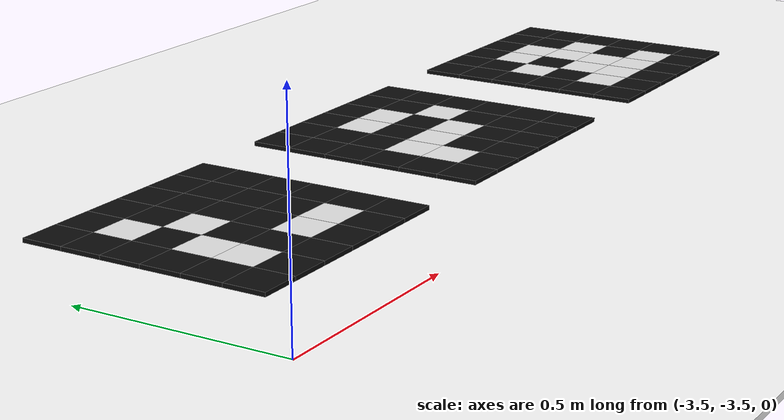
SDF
<sdf version="1.10">
 <world name="uav_world123">
  <model name="aruco_marker_101">
   <pose>-3 -3 0.014999999999999999 0 0 0</pose>
   <static>true</static>
   <link name="link">
    <visual name="block_0_0">
     <pose>-0.25 -0.25 0 0 0 0</pose>
     <geometry><box><size>0.10000000000000001 0.10000000000000001 0.01</size></box></geometry>
     <material>
      <ambient>0.0500000007 0.0500000007 0.0500000007 1</ambient>
      <diffuse>0.0500000007 0.0500000007 0.0500000007 1</diffuse>
     </material>
    </visual>
    <visual name="block_0_1">
     <pose>-0.15000000000000002 -0.25 0 0 0 0</pose>
     <geometry><box><size>0.10000000000000001 0.10000000000000001 0.01</size></box></geometry>
     <material>
      <ambient>0.0500000007 0.0500000007 0.0500000007 1</ambient>
      <diffuse>0.0500000007 0.0500000007 0.0500000007 1</diffuse>
     </material>
    </visual>
    <visual name="block_0_2">
     <pose>-0.050000000000000003 -0.25 0 0 0 0</pose>
     <geometry><box><size>0.10000000000000001 0.10000000000000001 0.01</size></box></geometry>
     <material>
      <ambient>0.0500000007 0.0500000007 0.0500000007 1</ambient>
      <diffuse>0.0500000007 0.0500000007 0.0500000007 1</diffuse>
     </material>
    </visual>
    <visual name="block_0_3">
     <pose>0.050000000000000003 -0.25 0 0 0 0</pose>
     <geometry><box><size>0.10000000000000001 0.10000000000000001 0.01</size></box></geometry>
     <material>
      <ambient>0.0500000007 0.0500000007 0.0500000007 1</ambient>
      <diffuse>0.0500000007 0.0500000007 0.0500000007 1</diffuse>
     </material>
    </visual>
    <visual name="block_0_4">
     <pose>0.15000000000000002 -0.25 0 0 0 0</pose>
     <geometry><box><size>0.10000000000000001 0.10000000000000001 0.01</size></box></geometry>
     <material>
      <ambient>0.0500000007 0.0500000007 0.0500000007 1</ambient>
      <diffuse>0.0500000007 0.0500000007 0.0500000007 1</diffuse>
     </material>
    </visual>
    <visual name="block_0_5">
     <pose>0.25 -0.25 0 0 0 0</pose>
     <geometry><box><size>0.10000000000000001 0.10000000000000001 0.01</size></box></geometry>
     <material>
      <ambient>0.0500000007 0.0500000007 0.0500000007 1</ambient>
      <diffuse>0.0500000007 0.0500000007 0.0500000007 1</diffuse>
     </material>
    </visual>
    <visual name="block_1_0">
     <pose>-0.25 -0.15000000000000002 0 0 0 0</pose>
     <geometry><box><size>0.10000000000000001 0.10000000000000001 0.01</size></box></geometry>
     <material>
      <ambient>0.0500000007 0.0500000007 0.0500000007 1</ambient>
      <diffuse>0.0500000007 0.0500000007 0.0500000007 1</diffuse>
     </material>
    </visual>
    <visual name="block_1_1">
     <pose>-0.15000000000000002 -0.15000000000000002 0 0 0 0</pose>
     <geometry><box><size>0.10000000000000001 0.10000000000000001 0.01</size></box></geometry>
     <material>
      <ambient>0.899999976 0.899999976 0.899999976 1</ambient>
      <diffuse>0.899999976 0.899999976 0.899999976 1</diffuse>
     </material>
    </visual>
    <visual name="block_1_2">
     <pose>-0.050000000000000003 -0.15000000000000002 0 0 0 0</pose>
     <geometry><box><size>0.10000000000000001 0.10000000000000001 0.01</size></box></geometry>
     <material>
      <ambient>0.0500000007 0.0500000007 0.0500000007 1</ambient>
      <diffuse>0.0500000007 0.0500000007 0.0500000007 1</diffuse>
     </material>
    </visual>
    <visual name="block_1_3">
     <pose>0.050000000000000003 -0.15000000000000002 0 0 0 0</pose>
     <geometry><box><size>0.10000000000000001 0.10000000000000001 0.01</size></box></geometry>
     <material>
      <ambient>0.899999976 0.899999976 0.899999976 1</ambient>
      <diffuse>0.899999976 0.899999976 0.899999976 1</diffuse>
     </material>
    </visual>
    <visual name="block_1_4">
     <pose>0.15000000000000002 -0.15000000000000002 0 0 0 0</pose>
     <geometry><box><size>0.10000000000000001 0.10000000000000001 0.01</size></box></geometry>
     <material>
      <ambient>0.899999976 0.899999976 0.899999976 1</ambient>
      <diffuse>0.899999976 0.899999976 0.899999976 1</diffuse>
     </material>
    </visual>
    <visual name="block_1_5">
     <pose>0.25 -0.15000000000000002 0 0 0 0</pose>
     <geometry><box><size>0.10000000000000001 0.10000000000000001 0.01</size></box></geometry>
     <material>
      <ambient>0.0500000007 0.0500000007 0.0500000007 1</ambient>
      <diffuse>0.0500000007 0.0500000007 0.0500000007 1</diffuse>
     </material>
    </visual>
    <visual name="block_2_0">
     <pose>-0.25 -0.050000000000000003 0 0 0 0</pose>
     <geometry><box><size>0.10000000000000001 0.10000000000000001 0.01</size></box></geometry>
     <material>
      <ambient>0.0500000007 0.0500000007 0.0500000007 1</ambient>
      <diffuse>0.0500000007 0.0500000007 0.0500000007 1</diffuse>
     </material>
    </visual>
    <visual name="block_2_1">
     <pose>-0.15000000000000002 -0.050000000000000003 0 0 0 0</pose>
     <geometry><box><size>0.10000000000000001 0.10000000000000001 0.01</size></box></geometry>
     <material>
      <ambient>0.899999976 0.899999976 0.899999976 1</ambient>
      <diffuse>0.899999976 0.899999976 0.899999976 1</diffuse>
     </material>
    </visual>
    <visual name="block_2_2">
     <pose>-0.050000000000000003 -0.050000000000000003 0 0 0 0</pose>
     <geometry><box><size>0.10000000000000001 0.10000000000000001 0.01</size></box></geometry>
     <material>
      <ambient>0.0500000007 0.0500000007 0.0500000007 1</ambient>
      <diffuse>0.0500000007 0.0500000007 0.0500000007 1</diffuse>
     </material>
    </visual>
    <visual name="block_2_3">
     <pose>0.050000000000000003 -0.050000000000000003 0 0 0 0</pose>
     <geometry><box><size>0.10000000000000001 0.10000000000000001 0.01</size></box></geometry>
     <material>
      <ambient>0.0500000007 0.0500000007 0.0500000007 1</ambient>
      <diffuse>0.0500000007 0.0500000007 0.0500000007 1</diffuse>
     </material>
    </visual>
    <visual name="block_2_4">
     <pose>0.15000000000000002 -0.050000000000000003 0 0 0 0</pose>
     <geometry><box><size>0.10000000000000001 0.10000000000000001 0.01</size></box></geometry>
     <material>
      <ambient>0.0500000007 0.0500000007 0.0500000007 1</ambient>
      <diffuse>0.0500000007 0.0500000007 0.0500000007 1</diffuse>
     </material>
    </visual>
    <visual name="block_2_5">
     <pose>0.25 -0.050000000000000003 0 0 0 0</pose>
     <geometry><box><size>0.10000000000000001 0.10000000000000001 0.01</size></box></geometry>
     <material>
      <ambient>0.0500000007 0.0500000007 0.0500000007 1</ambient>
      <diffuse>0.0500000007 0.0500000007 0.0500000007 1</diffuse>
     </material>
    </visual>
    <visual name="block_3_0">
     <pose>-0.25 0.050000000000000003 0 0 0 0</pose>
     <geometry><box><size>0.10000000000000001 0.10000000000000001 0.01</size></box></geometry>
     <material>
      <ambient>0.0500000007 0.0500000007 0.0500000007 1</ambient>
      <diffuse>0.0500000007 0.0500000007 0.0500000007 1</diffuse>
     </material>
    </visual>
    <visual name="block_3_1">
     <pose>-0.15000000000000002 0.050000000000000003 0 0 0 0</pose>
     <geometry><box><size>0.10000000000000001 0.10000000000000001 0.01</size></box></geometry>
     <material>
      <ambient>0.0500000007 0.0500000007 0.0500000007 1</ambient>
      <diffuse>0.0500000007 0.0500000007 0.0500000007 1</diffuse>
     </material>
    </visual>
    <visual name="block_3_2">
     <pose>-0.050000000000000003 0.050000000000000003 0 0 0 0</pose>
     <geometry><box><size>0.10000000000000001 0.10000000000000001 0.01</size></box></geometry>
     <material>
      <ambient>0.899999976 0.899999976 0.899999976 1</ambient>
      <diffuse>0.899999976 0.899999976 0.899999976 1</diffuse>
     </material>
    </visual>
    <visual name="block_3_3">
     <pose>0.050000000000000003 0.050000000000000003 0 0 0 0</pose>
     <geometry><box><size>0.10000000000000001 0.10000000000000001 0.01</size></box></geometry>
     <material>
      <ambient>0.0500000007 0.0500000007 0.0500000007 1</ambient>
      <diffuse>0.0500000007 0.0500000007 0.0500000007 1</diffuse>
     </material>
    </visual>
    <visual name="block_3_4">
     <pose>0.15000000000000002 0.050000000000000003 0 0 0 0</pose>
     <geometry><box><size>0.10000000000000001 0.10000000000000001 0.01</size></box></geometry>
     <material>
      <ambient>0.0500000007 0.0500000007 0.0500000007 1</ambient>
      <diffuse>0.0500000007 0.0500000007 0.0500000007 1</diffuse>
     </material>
    </visual>
    <visual name="block_3_5">
     <pose>0.25 0.050000000000000003 0 0 0 0</pose>
     <geometry><box><size>0.10000000000000001 0.10000000000000001 0.01</size></box></geometry>
     <material>
      <ambient>0.0500000007 0.0500000007 0.0500000007 1</ambient>
      <diffuse>0.0500000007 0.0500000007 0.0500000007 1</diffuse>
     </material>
    </visual>
    <visual name="block_4_0">
     <pose>-0.25 0.15000000000000002 0 0 0 0</pose>
     <geometry><box><size>0.10000000000000001 0.10000000000000001 0.01</size></box></geometry>
     <material>
      <ambient>0.0500000007 0.0500000007 0.0500000007 1</ambient>
      <diffuse>0.0500000007 0.0500000007 0.0500000007 1</diffuse>
     </material>
    </visual>
    <visual name="block_4_1">
     <pose>-0.15000000000000002 0.15000000000000002 0 0 0 0</pose>
     <geometry><box><size>0.10000000000000001 0.10000000000000001 0.01</size></box></geometry>
     <material>
      <ambient>0.899999976 0.899999976 0.899999976 1</ambient>
      <diffuse>0.899999976 0.899999976 0.899999976 1</diffuse>
     </material>
    </visual>
    <visual name="block_4_2">
     <pose>-0.050000000000000003 0.15000000000000002 0 0 0 0</pose>
     <geometry><box><size>0.10000000000000001 0.10000000000000001 0.01</size></box></geometry>
     <material>
      <ambient>0.0500000007 0.0500000007 0.0500000007 1</ambient>
      <diffuse>0.0500000007 0.0500000007 0.0500000007 1</diffuse>
     </material>
    </visual>
    <visual name="block_4_3">
     <pose>0.050000000000000003 0.15000000000000002 0 0 0 0</pose>
     <geometry><box><size>0.10000000000000001 0.10000000000000001 0.01</size></box></geometry>
     <material>
      <ambient>0.0500000007 0.0500000007 0.0500000007 1</ambient>
      <diffuse>0.0500000007 0.0500000007 0.0500000007 1</diffuse>
     </material>
    </visual>
    <visual name="block_4_4">
     <pose>0.15000000000000002 0.15000000000000002 0 0 0 0</pose>
     <geometry><box><size>0.10000000000000001 0.10000000000000001 0.01</size></box></geometry>
     <material>
      <ambient>0.0500000007 0.0500000007 0.0500000007 1</ambient>
      <diffuse>0.0500000007 0.0500000007 0.0500000007 1</diffuse>
     </material>
    </visual>
    <visual name="block_4_5">
     <pose>0.25 0.15000000000000002 0 0 0 0</pose>
     <geometry><box><size>0.10000000000000001 0.10000000000000001 0.01</size></box></geometry>
     <material>
      <ambient>0.0500000007 0.0500000007 0.0500000007 1</ambient>
      <diffuse>0.0500000007 0.0500000007 0.0500000007 1</diffuse>
     </material>
    </visual>
    <visual name="block_5_0">
     <pose>-0.25 0.25 0 0 0 0</pose>
     <geometry><box><size>0.10000000000000001 0.10000000000000001 0.01</size></box></geometry>
     <material>
      <ambient>0.0500000007 0.0500000007 0.0500000007 1</ambient>
      <diffuse>0.0500000007 0.0500000007 0.0500000007 1</diffuse>
     </material>
    </visual>
    <visual name="block_5_1">
     <pose>-0.15000000000000002 0.25 0 0 0 0</pose>
     <geometry><box><size>0.10000000000000001 0.10000000000000001 0.01</size></box></geometry>
     <material>
      <ambient>0.0500000007 0.0500000007 0.0500000007 1</ambient>
      <diffuse>0.0500000007 0.0500000007 0.0500000007 1</diffuse>
     </material>
    </visual>
    <visual name="block_5_2">
     <pose>-0.050000000000000003 0.25 0 0 0 0</pose>
     <geometry><box><size>0.10000000000000001 0.10000000000000001 0.01</size></box></geometry>
     <material>
      <ambient>0.0500000007 0.0500000007 0.0500000007 1</ambient>
      <diffuse>0.0500000007 0.0500000007 0.0500000007 1</diffuse>
     </material>
    </visual>
    <visual name="block_5_3">
     <pose>0.050000000000000003 0.25 0 0 0 0</pose>
     <geometry><box><size>0.10000000000000001 0.10000000000000001 0.01</size></box></geometry>
     <material>
      <ambient>0.0500000007 0.0500000007 0.0500000007 1</ambient>
      <diffuse>0.0500000007 0.0500000007 0.0500000007 1</diffuse>
     </material>
    </visual>
    <visual name="block_5_4">
     <pose>0.15000000000000002 0.25 0 0 0 0</pose>
     <geometry><box><size>0.10000000000000001 0.10000000000000001 0.01</size></box></geometry>
     <material>
      <ambient>0.0500000007 0.0500000007 0.0500000007 1</ambient>
      <diffuse>0.0500000007 0.0500000007 0.0500000007 1</diffuse>
     </material>
    </visual>
    <visual name="block_5_5">
     <pose>0.25 0.25 0 0 0 0</pose>
     <geometry><box><size>0.10000000000000001 0.10000000000000001 0.01</size></box></geometry>
     <material>
      <ambient>0.0500000007 0.0500000007 0.0500000007 1</ambient>
      <diffuse>0.0500000007 0.0500000007 0.0500000007 1</diffuse>
     </material>
    </visual>
    <inertial>
     <mass>1</mass>
     <inertia><ixx>1</ixx><ixy>0</ixy><ixz>0</ixz><iyy>1</iyy><iyz>0</iyz><izz>1</izz></inertia>
    </inertial>
   </link>
  </model>
  <model name="aruco_marker_102">
   <pose>-2.2000000000000002 -3 0.014999999999999999 0 0 0</pose>
   <static>true</static>
   <link name="link">
    <visual name="block_0_0">
     <pose>-0.25 -0.25 0 0 0 0</pose>
     <geometry><box><size>0.10000000000000001 0.10000000000000001 0.01</size></box></geometry>
     <material>
      <ambient>0.0500000007 0.0500000007 0.0500000007 1</ambient>
      <diffuse>0.0500000007 0.0500000007 0.0500000007 1</diffuse>
     </material>
    </visual>
    <visual name="block_0_1">
     <pose>-0.15000000000000002 -0.25 0 0 0 0</pose>
     <geometry><box><size>0.10000000000000001 0.10000000000000001 0.01</size></box></geometry>
     <material>
      <ambient>0.0500000007 0.0500000007 0.0500000007 1</ambient>
      <diffuse>0.0500000007 0.0500000007 0.0500000007 1</diffuse>
     </material>
    </visual>
    <visual name="block_0_2">
     <pose>-0.050000000000000003 -0.25 0 0 0 0</pose>
     <geometry><box><size>0.10000000000000001 0.10000000000000001 0.01</size></box></geometry>
     <material>
      <ambient>0.0500000007 0.0500000007 0.0500000007 1</ambient>
      <diffuse>0.0500000007 0.0500000007 0.0500000007 1</diffuse>
     </material>
    </visual>
    <visual name="block_0_3">
     <pose>0.050000000000000003 -0.25 0 0 0 0</pose>
     <geometry><box><size>0.10000000000000001 0.10000000000000001 0.01</size></box></geometry>
     <material>
      <ambient>0.0500000007 0.0500000007 0.0500000007 1</ambient>
      <diffuse>0.0500000007 0.0500000007 0.0500000007 1</diffuse>
     </material>
    </visual>
    <visual name="block_0_4">
     <pose>0.15000000000000002 -0.25 0 0 0 0</pose>
     <geometry><box><size>0.10000000000000001 0.10000000000000001 0.01</size></box></geometry>
     <material>
      <ambient>0.0500000007 0.0500000007 0.0500000007 1</ambient>
      <diffuse>0.0500000007 0.0500000007 0.0500000007 1</diffuse>
     </material>
    </visual>
    <visual name="block_0_5">
     <pose>0.25 -0.25 0 0 0 0</pose>
     <geometry><box><size>0.10000000000000001 0.10000000000000001 0.01</size></box></geometry>
     <material>
      <ambient>0.0500000007 0.0500000007 0.0500000007 1</ambient>
      <diffuse>0.0500000007 0.0500000007 0.0500000007 1</diffuse>
     </material>
    </visual>
    <visual name="block_1_0">
     <pose>-0.25 -0.15000000000000002 0 0 0 0</pose>
     <geometry><box><size>0.10000000000000001 0.10000000000000001 0.01</size></box></geometry>
     <material>
      <ambient>0.0500000007 0.0500000007 0.0500000007 1</ambient>
      <diffuse>0.0500000007 0.0500000007 0.0500000007 1</diffuse>
     </material>
    </visual>
    <visual name="block_1_1">
     <pose>-0.15000000000000002 -0.15000000000000002 0 0 0 0</pose>
     <geometry><box><size>0.10000000000000001 0.10000000000000001 0.01</size></box></geometry>
     <material>
      <ambient>0.899999976 0.899999976 0.899999976 1</ambient>
      <diffuse>0.899999976 0.899999976 0.899999976 1</diffuse>
     </material>
    </visual>
    <visual name="block_1_2">
     <pose>-0.050000000000000003 -0.15000000000000002 0 0 0 0</pose>
     <geometry><box><size>0.10000000000000001 0.10000000000000001 0.01</size></box></geometry>
     <material>
      <ambient>0.0500000007 0.0500000007 0.0500000007 1</ambient>
      <diffuse>0.0500000007 0.0500000007 0.0500000007 1</diffuse>
     </material>
    </visual>
    <visual name="block_1_3">
     <pose>0.050000000000000003 -0.15000000000000002 0 0 0 0</pose>
     <geometry><box><size>0.10000000000000001 0.10000000000000001 0.01</size></box></geometry>
     <material>
      <ambient>0.0500000007 0.0500000007 0.0500000007 1</ambient>
      <diffuse>0.0500000007 0.0500000007 0.0500000007 1</diffuse>
     </material>
    </visual>
    <visual name="block_1_4">
     <pose>0.15000000000000002 -0.15000000000000002 0 0 0 0</pose>
     <geometry><box><size>0.10000000000000001 0.10000000000000001 0.01</size></box></geometry>
     <material>
      <ambient>0.0500000007 0.0500000007 0.0500000007 1</ambient>
      <diffuse>0.0500000007 0.0500000007 0.0500000007 1</diffuse>
     </material>
    </visual>
    <visual name="block_1_5">
     <pose>0.25 -0.15000000000000002 0 0 0 0</pose>
     <geometry><box><size>0.10000000000000001 0.10000000000000001 0.01</size></box></geometry>
     <material>
      <ambient>0.0500000007 0.0500000007 0.0500000007 1</ambient>
      <diffuse>0.0500000007 0.0500000007 0.0500000007 1</diffuse>
     </material>
    </visual>
    <visual name="block_2_0">
     <pose>-0.25 -0.050000000000000003 0 0 0 0</pose>
     <geometry><box><size>0.10000000000000001 0.10000000000000001 0.01</size></box></geometry>
     <material>
      <ambient>0.0500000007 0.0500000007 0.0500000007 1</ambient>
      <diffuse>0.0500000007 0.0500000007 0.0500000007 1</diffuse>
     </material>
    </visual>
    <visual name="block_2_1">
     <pose>-0.15000000000000002 -0.050000000000000003 0 0 0 0</pose>
     <geometry><box><size>0.10000000000000001 0.10000000000000001 0.01</size></box></geometry>
     <material>
      <ambient>0.899999976 0.899999976 0.899999976 1</ambient>
      <diffuse>0.899999976 0.899999976 0.899999976 1</diffuse>
     </material>
    </visual>
    <visual name="block_2_2">
     <pose>-0.050000000000000003 -0.050000000000000003 0 0 0 0</pose>
     <geometry><box><size>0.10000000000000001 0.10000000000000001 0.01</size></box></geometry>
     <material>
      <ambient>0.899999976 0.899999976 0.899999976 1</ambient>
      <diffuse>0.899999976 0.899999976 0.899999976 1</diffuse>
     </material>
    </visual>
    <visual name="block_2_3">
     <pose>0.050000000000000003 -0.050000000000000003 0 0 0 0</pose>
     <geometry><box><size>0.10000000000000001 0.10000000000000001 0.01</size></box></geometry>
     <material>
      <ambient>0.899999976 0.899999976 0.899999976 1</ambient>
      <diffuse>0.899999976 0.899999976 0.899999976 1</diffuse>
     </material>
    </visual>
    <visual name="block_2_4">
     <pose>0.15000000000000002 -0.050000000000000003 0 0 0 0</pose>
     <geometry><box><size>0.10000000000000001 0.10000000000000001 0.01</size></box></geometry>
     <material>
      <ambient>0.0500000007 0.0500000007 0.0500000007 1</ambient>
      <diffuse>0.0500000007 0.0500000007 0.0500000007 1</diffuse>
     </material>
    </visual>
    <visual name="block_2_5">
     <pose>0.25 -0.050000000000000003 0 0 0 0</pose>
     <geometry><box><size>0.10000000000000001 0.10000000000000001 0.01</size></box></geometry>
     <material>
      <ambient>0.0500000007 0.0500000007 0.0500000007 1</ambient>
      <diffuse>0.0500000007 0.0500000007 0.0500000007 1</diffuse>
     </material>
    </visual>
    <visual name="block_3_0">
     <pose>-0.25 0.050000000000000003 0 0 0 0</pose>
     <geometry><box><size>0.10000000000000001 0.10000000000000001 0.01</size></box></geometry>
     <material>
      <ambient>0.0500000007 0.0500000007 0.0500000007 1</ambient>
      <diffuse>0.0500000007 0.0500000007 0.0500000007 1</diffuse>
     </material>
    </visual>
    <visual name="block_3_1">
     <pose>-0.15000000000000002 0.050000000000000003 0 0 0 0</pose>
     <geometry><box><size>0.10000000000000001 0.10000000000000001 0.01</size></box></geometry>
     <material>
      <ambient>0.0500000007 0.0500000007 0.0500000007 1</ambient>
      <diffuse>0.0500000007 0.0500000007 0.0500000007 1</diffuse>
     </material>
    </visual>
    <visual name="block_3_2">
     <pose>-0.050000000000000003 0.050000000000000003 0 0 0 0</pose>
     <geometry><box><size>0.10000000000000001 0.10000000000000001 0.01</size></box></geometry>
     <material>
      <ambient>0.0500000007 0.0500000007 0.0500000007 1</ambient>
      <diffuse>0.0500000007 0.0500000007 0.0500000007 1</diffuse>
     </material>
    </visual>
    <visual name="block_3_3">
     <pose>0.050000000000000003 0.050000000000000003 0 0 0 0</pose>
     <geometry><box><size>0.10000000000000001 0.10000000000000001 0.01</size></box></geometry>
     <material>
      <ambient>0.0500000007 0.0500000007 0.0500000007 1</ambient>
      <diffuse>0.0500000007 0.0500000007 0.0500000007 1</diffuse>
     </material>
    </visual>
    <visual name="block_3_4">
     <pose>0.15000000000000002 0.050000000000000003 0 0 0 0</pose>
     <geometry><box><size>0.10000000000000001 0.10000000000000001 0.01</size></box></geometry>
     <material>
      <ambient>0.899999976 0.899999976 0.899999976 1</ambient>
      <diffuse>0.899999976 0.899999976 0.899999976 1</diffuse>
     </material>
    </visual>
    <visual name="block_3_5">
     <pose>0.25 0.050000000000000003 0 0 0 0</pose>
     <geometry><box><size>0.10000000000000001 0.10000000000000001 0.01</size></box></geometry>
     <material>
      <ambient>0.0500000007 0.0500000007 0.0500000007 1</ambient>
      <diffuse>0.0500000007 0.0500000007 0.0500000007 1</diffuse>
     </material>
    </visual>
    <visual name="block_4_0">
     <pose>-0.25 0.15000000000000002 0 0 0 0</pose>
     <geometry><box><size>0.10000000000000001 0.10000000000000001 0.01</size></box></geometry>
     <material>
      <ambient>0.0500000007 0.0500000007 0.0500000007 1</ambient>
      <diffuse>0.0500000007 0.0500000007 0.0500000007 1</diffuse>
     </material>
    </visual>
    <visual name="block_4_1">
     <pose>-0.15000000000000002 0.15000000000000002 0 0 0 0</pose>
     <geometry><box><size>0.10000000000000001 0.10000000000000001 0.01</size></box></geometry>
     <material>
      <ambient>0.0500000007 0.0500000007 0.0500000007 1</ambient>
      <diffuse>0.0500000007 0.0500000007 0.0500000007 1</diffuse>
     </material>
    </visual>
    <visual name="block_4_2">
     <pose>-0.050000000000000003 0.15000000000000002 0 0 0 0</pose>
     <geometry><box><size>0.10000000000000001 0.10000000000000001 0.01</size></box></geometry>
     <material>
      <ambient>0.899999976 0.899999976 0.899999976 1</ambient>
      <diffuse>0.899999976 0.899999976 0.899999976 1</diffuse>
     </material>
    </visual>
    <visual name="block_4_3">
     <pose>0.050000000000000003 0.15000000000000002 0 0 0 0</pose>
     <geometry><box><size>0.10000000000000001 0.10000000000000001 0.01</size></box></geometry>
     <material>
      <ambient>0.899999976 0.899999976 0.899999976 1</ambient>
      <diffuse>0.899999976 0.899999976 0.899999976 1</diffuse>
     </material>
    </visual>
    <visual name="block_4_4">
     <pose>0.15000000000000002 0.15000000000000002 0 0 0 0</pose>
     <geometry><box><size>0.10000000000000001 0.10000000000000001 0.01</size></box></geometry>
     <material>
      <ambient>0.0500000007 0.0500000007 0.0500000007 1</ambient>
      <diffuse>0.0500000007 0.0500000007 0.0500000007 1</diffuse>
     </material>
    </visual>
    <visual name="block_4_5">
     <pose>0.25 0.15000000000000002 0 0 0 0</pose>
     <geometry><box><size>0.10000000000000001 0.10000000000000001 0.01</size></box></geometry>
     <material>
      <ambient>0.0500000007 0.0500000007 0.0500000007 1</ambient>
      <diffuse>0.0500000007 0.0500000007 0.0500000007 1</diffuse>
     </material>
    </visual>
    <visual name="block_5_0">
     <pose>-0.25 0.25 0 0 0 0</pose>
     <geometry><box><size>0.10000000000000001 0.10000000000000001 0.01</size></box></geometry>
     <material>
      <ambient>0.0500000007 0.0500000007 0.0500000007 1</ambient>
      <diffuse>0.0500000007 0.0500000007 0.0500000007 1</diffuse>
     </material>
    </visual>
    <visual name="block_5_1">
     <pose>-0.15000000000000002 0.25 0 0 0 0</pose>
     <geometry><box><size>0.10000000000000001 0.10000000000000001 0.01</size></box></geometry>
     <material>
      <ambient>0.0500000007 0.0500000007 0.0500000007 1</ambient>
      <diffuse>0.0500000007 0.0500000007 0.0500000007 1</diffuse>
     </material>
    </visual>
    <visual name="block_5_2">
     <pose>-0.050000000000000003 0.25 0 0 0 0</pose>
     <geometry><box><size>0.10000000000000001 0.10000000000000001 0.01</size></box></geometry>
     <material>
      <ambient>0.0500000007 0.0500000007 0.0500000007 1</ambient>
      <diffuse>0.0500000007 0.0500000007 0.0500000007 1</diffuse>
     </material>
    </visual>
    <visual name="block_5_3">
     <pose>0.050000000000000003 0.25 0 0 0 0</pose>
     <geometry><box><size>0.10000000000000001 0.10000000000000001 0.01</size></box></geometry>
     <material>
      <ambient>0.0500000007 0.0500000007 0.0500000007 1</ambient>
      <diffuse>0.0500000007 0.0500000007 0.0500000007 1</diffuse>
     </material>
    </visual>
    <visual name="block_5_4">
     <pose>0.15000000000000002 0.25 0 0 0 0</pose>
     <geometry><box><size>0.10000000000000001 0.10000000000000001 0.01</size></box></geometry>
     <material>
      <ambient>0.0500000007 0.0500000007 0.0500000007 1</ambient>
      <diffuse>0.0500000007 0.0500000007 0.0500000007 1</diffuse>
     </material>
    </visual>
    <visual name="block_5_5">
     <pose>0.25 0.25 0 0 0 0</pose>
     <geometry><box><size>0.10000000000000001 0.10000000000000001 0.01</size></box></geometry>
     <material>
      <ambient>0.0500000007 0.0500000007 0.0500000007 1</ambient>
      <diffuse>0.0500000007 0.0500000007 0.0500000007 1</diffuse>
     </material>
    </visual>
    <inertial>
     <mass>1</mass>
     <inertia><ixx>1</ixx><ixy>0</ixy><ixz>0</ixz><iyy>1</iyy><iyz>0</iyz><izz>1</izz></inertia>
    </inertial>
   </link>
  </model>
  <model name="aruco_marker_103">
   <pose>-1.3999999999999999 -3 0.014999999999999999 0 0 0</pose>
   <static>true</static>
   <link name="link">
    <visual name="block_0_0">
     <pose>-0.25 -0.25 0 0 0 0</pose>
     <geometry><box><size>0.10000000000000001 0.10000000000000001 0.01</size></box></geometry>
     <material>
      <ambient>0.0500000007 0.0500000007 0.0500000007 1</ambient>
      <diffuse>0.0500000007 0.0500000007 0.0500000007 1</diffuse>
     </material>
    </visual>
    <visual name="block_0_1">
     <pose>-0.15000000000000002 -0.25 0 0 0 0</pose>
     <geometry><box><size>0.10000000000000001 0.10000000000000001 0.01</size></box></geometry>
     <material>
      <ambient>0.0500000007 0.0500000007 0.0500000007 1</ambient>
      <diffuse>0.0500000007 0.0500000007 0.0500000007 1</diffuse>
     </material>
    </visual>
    <visual name="block_0_2">
     <pose>-0.050000000000000003 -0.25 0 0 0 0</pose>
     <geometry><box><size>0.10000000000000001 0.10000000000000001 0.01</size></box></geometry>
     <material>
      <ambient>0.0500000007 0.0500000007 0.0500000007 1</ambient>
      <diffuse>0.0500000007 0.0500000007 0.0500000007 1</diffuse>
     </material>
    </visual>
    <visual name="block_0_3">
     <pose>0.050000000000000003 -0.25 0 0 0 0</pose>
     <geometry><box><size>0.10000000000000001 0.10000000000000001 0.01</size></box></geometry>
     <material>
      <ambient>0.0500000007 0.0500000007 0.0500000007 1</ambient>
      <diffuse>0.0500000007 0.0500000007 0.0500000007 1</diffuse>
     </material>
    </visual>
    <visual name="block_0_4">
     <pose>0.15000000000000002 -0.25 0 0 0 0</pose>
     <geometry><box><size>0.10000000000000001 0.10000000000000001 0.01</size></box></geometry>
     <material>
      <ambient>0.0500000007 0.0500000007 0.0500000007 1</ambient>
      <diffuse>0.0500000007 0.0500000007 0.0500000007 1</diffuse>
     </material>
    </visual>
    <visual name="block_0_5">
     <pose>0.25 -0.25 0 0 0 0</pose>
     <geometry><box><size>0.10000000000000001 0.10000000000000001 0.01</size></box></geometry>
     <material>
      <ambient>0.0500000007 0.0500000007 0.0500000007 1</ambient>
      <diffuse>0.0500000007 0.0500000007 0.0500000007 1</diffuse>
     </material>
    </visual>
    <visual name="block_1_0">
     <pose>-0.25 -0.15000000000000002 0 0 0 0</pose>
     <geometry><box><size>0.10000000000000001 0.10000000000000001 0.01</size></box></geometry>
     <material>
      <ambient>0.0500000007 0.0500000007 0.0500000007 1</ambient>
      <diffuse>0.0500000007 0.0500000007 0.0500000007 1</diffuse>
     </material>
    </visual>
    <visual name="block_1_1">
     <pose>-0.15000000000000002 -0.15000000000000002 0 0 0 0</pose>
     <geometry><box><size>0.10000000000000001 0.10000000000000001 0.01</size></box></geometry>
     <material>
      <ambient>0.899999976 0.899999976 0.899999976 1</ambient>
      <diffuse>0.899999976 0.899999976 0.899999976 1</diffuse>
     </material>
    </visual>
    <visual name="block_1_2">
     <pose>-0.050000000000000003 -0.15000000000000002 0 0 0 0</pose>
     <geometry><box><size>0.10000000000000001 0.10000000000000001 0.01</size></box></geometry>
     <material>
      <ambient>0.899999976 0.899999976 0.899999976 1</ambient>
      <diffuse>0.899999976 0.899999976 0.899999976 1</diffuse>
     </material>
    </visual>
    <visual name="block_1_3">
     <pose>0.050000000000000003 -0.15000000000000002 0 0 0 0</pose>
     <geometry><box><size>0.10000000000000001 0.10000000000000001 0.01</size></box></geometry>
     <material>
      <ambient>0.899999976 0.899999976 0.899999976 1</ambient>
      <diffuse>0.899999976 0.899999976 0.899999976 1</diffuse>
     </material>
    </visual>
    <visual name="block_1_4">
     <pose>0.15000000000000002 -0.15000000000000002 0 0 0 0</pose>
     <geometry><box><size>0.10000000000000001 0.10000000000000001 0.01</size></box></geometry>
     <material>
      <ambient>0.899999976 0.899999976 0.899999976 1</ambient>
      <diffuse>0.899999976 0.899999976 0.899999976 1</diffuse>
     </material>
    </visual>
    <visual name="block_1_5">
     <pose>0.25 -0.15000000000000002 0 0 0 0</pose>
     <geometry><box><size>0.10000000000000001 0.10000000000000001 0.01</size></box></geometry>
     <material>
      <ambient>0.0500000007 0.0500000007 0.0500000007 1</ambient>
      <diffuse>0.0500000007 0.0500000007 0.0500000007 1</diffuse>
     </material>
    </visual>
    <visual name="block_2_0">
     <pose>-0.25 -0.050000000000000003 0 0 0 0</pose>
     <geometry><box><size>0.10000000000000001 0.10000000000000001 0.01</size></box></geometry>
     <material>
      <ambient>0.0500000007 0.0500000007 0.0500000007 1</ambient>
      <diffuse>0.0500000007 0.0500000007 0.0500000007 1</diffuse>
     </material>
    </visual>
    <visual name="block_2_1">
     <pose>-0.15000000000000002 -0.050000000000000003 0 0 0 0</pose>
     <geometry><box><size>0.10000000000000001 0.10000000000000001 0.01</size></box></geometry>
     <material>
      <ambient>0.0500000007 0.0500000007 0.0500000007 1</ambient>
      <diffuse>0.0500000007 0.0500000007 0.0500000007 1</diffuse>
     </material>
    </visual>
    <visual name="block_2_2">
     <pose>-0.050000000000000003 -0.050000000000000003 0 0 0 0</pose>
     <geometry><box><size>0.10000000000000001 0.10000000000000001 0.01</size></box></geometry>
     <material>
      <ambient>0.899999976 0.899999976 0.899999976 1</ambient>
      <diffuse>0.899999976 0.899999976 0.899999976 1</diffuse>
     </material>
    </visual>
    <visual name="block_2_3">
     <pose>0.050000000000000003 -0.050000000000000003 0 0 0 0</pose>
     <geometry><box><size>0.10000000000000001 0.10000000000000001 0.01</size></box></geometry>
     <material>
      <ambient>0.899999976 0.899999976 0.899999976 1</ambient>
      <diffuse>0.899999976 0.899999976 0.899999976 1</diffuse>
     </material>
    </visual>
    <visual name="block_2_4">
     <pose>0.15000000000000002 -0.050000000000000003 0 0 0 0</pose>
     <geometry><box><size>0.10000000000000001 0.10000000000000001 0.01</size></box></geometry>
     <material>
      <ambient>0.0500000007 0.0500000007 0.0500000007 1</ambient>
      <diffuse>0.0500000007 0.0500000007 0.0500000007 1</diffuse>
     </material>
    </visual>
    <visual name="block_2_5">
     <pose>0.25 -0.050000000000000003 0 0 0 0</pose>
     <geometry><box><size>0.10000000000000001 0.10000000000000001 0.01</size></box></geometry>
     <material>
      <ambient>0.0500000007 0.0500000007 0.0500000007 1</ambient>
      <diffuse>0.0500000007 0.0500000007 0.0500000007 1</diffuse>
     </material>
    </visual>
    <visual name="block_3_0">
     <pose>-0.25 0.050000000000000003 0 0 0 0</pose>
     <geometry><box><size>0.10000000000000001 0.10000000000000001 0.01</size></box></geometry>
     <material>
      <ambient>0.0500000007 0.0500000007 0.0500000007 1</ambient>
      <diffuse>0.0500000007 0.0500000007 0.0500000007 1</diffuse>
     </material>
    </visual>
    <visual name="block_3_1">
     <pose>-0.15000000000000002 0.050000000000000003 0 0 0 0</pose>
     <geometry><box><size>0.10000000000000001 0.10000000000000001 0.01</size></box></geometry>
     <material>
      <ambient>0.899999976 0.899999976 0.899999976 1</ambient>
      <diffuse>0.899999976 0.899999976 0.899999976 1</diffuse>
     </material>
    </visual>
    <visual name="block_3_2">
     <pose>-0.050000000000000003 0.050000000000000003 0 0 0 0</pose>
     <geometry><box><size>0.10000000000000001 0.10000000000000001 0.01</size></box></geometry>
     <material>
      <ambient>0.0500000007 0.0500000007 0.0500000007 1</ambient>
      <diffuse>0.0500000007 0.0500000007 0.0500000007 1</diffuse>
     </material>
    </visual>
    <visual name="block_3_3">
     <pose>0.050000000000000003 0.050000000000000003 0 0 0 0</pose>
     <geometry><box><size>0.10000000000000001 0.10000000000000001 0.01</size></box></geometry>
     <material>
      <ambient>0.899999976 0.899999976 0.899999976 1</ambient>
      <diffuse>0.899999976 0.899999976 0.899999976 1</diffuse>
     </material>
    </visual>
    <visual name="block_3_4">
     <pose>0.15000000000000002 0.050000000000000003 0 0 0 0</pose>
     <geometry><box><size>0.10000000000000001 0.10000000000000001 0.01</size></box></geometry>
     <material>
      <ambient>0.899999976 0.899999976 0.899999976 1</ambient>
      <diffuse>0.899999976 0.899999976 0.899999976 1</diffuse>
     </material>
    </visual>
    <visual name="block_3_5">
     <pose>0.25 0.050000000000000003 0 0 0 0</pose>
     <geometry><box><size>0.10000000000000001 0.10000000000000001 0.01</size></box></geometry>
     <material>
      <ambient>0.0500000007 0.0500000007 0.0500000007 1</ambient>
      <diffuse>0.0500000007 0.0500000007 0.0500000007 1</diffuse>
     </material>
    </visual>
    <visual name="block_4_0">
     <pose>-0.25 0.15000000000000002 0 0 0 0</pose>
     <geometry><box><size>0.10000000000000001 0.10000000000000001 0.01</size></box></geometry>
     <material>
      <ambient>0.0500000007 0.0500000007 0.0500000007 1</ambient>
      <diffuse>0.0500000007 0.0500000007 0.0500000007 1</diffuse>
     </material>
    </visual>
    <visual name="block_4_1">
     <pose>-0.15000000000000002 0.15000000000000002 0 0 0 0</pose>
     <geometry><box><size>0.10000000000000001 0.10000000000000001 0.01</size></box></geometry>
     <material>
      <ambient>0.0500000007 0.0500000007 0.0500000007 1</ambient>
      <diffuse>0.0500000007 0.0500000007 0.0500000007 1</diffuse>
     </material>
    </visual>
    <visual name="block_4_2">
     <pose>-0.050000000000000003 0.15000000000000002 0 0 0 0</pose>
     <geometry><box><size>0.10000000000000001 0.10000000000000001 0.01</size></box></geometry>
     <material>
      <ambient>0.899999976 0.899999976 0.899999976 1</ambient>
      <diffuse>0.899999976 0.899999976 0.899999976 1</diffuse>
     </material>
    </visual>
    <visual name="block_4_3">
     <pose>0.050000000000000003 0.15000000000000002 0 0 0 0</pose>
     <geometry><box><size>0.10000000000000001 0.10000000000000001 0.01</size></box></geometry>
     <material>
      <ambient>0.899999976 0.899999976 0.899999976 1</ambient>
      <diffuse>0.899999976 0.899999976 0.899999976 1</diffuse>
     </material>
    </visual>
    <visual name="block_4_4">
     <pose>0.15000000000000002 0.15000000000000002 0 0 0 0</pose>
     <geometry><box><size>0.10000000000000001 0.10000000000000001 0.01</size></box></geometry>
     <material>
      <ambient>0.0500000007 0.0500000007 0.0500000007 1</ambient>
      <diffuse>0.0500000007 0.0500000007 0.0500000007 1</diffuse>
     </material>
    </visual>
    <visual name="block_4_5">
     <pose>0.25 0.15000000000000002 0 0 0 0</pose>
     <geometry><box><size>0.10000000000000001 0.10000000000000001 0.01</size></box></geometry>
     <material>
      <ambient>0.0500000007 0.0500000007 0.0500000007 1</ambient>
      <diffuse>0.0500000007 0.0500000007 0.0500000007 1</diffuse>
     </material>
    </visual>
    <visual name="block_5_0">
     <pose>-0.25 0.25 0 0 0 0</pose>
     <geometry><box><size>0.10000000000000001 0.10000000000000001 0.01</size></box></geometry>
     <material>
      <ambient>0.0500000007 0.0500000007 0.0500000007 1</ambient>
      <diffuse>0.0500000007 0.0500000007 0.0500000007 1</diffuse>
     </material>
    </visual>
    <visual name="block_5_1">
     <pose>-0.15000000000000002 0.25 0 0 0 0</pose>
     <geometry><box><size>0.10000000000000001 0.10000000000000001 0.01</size></box></geometry>
     <material>
      <ambient>0.0500000007 0.0500000007 0.0500000007 1</ambient>
      <diffuse>0.0500000007 0.0500000007 0.0500000007 1</diffuse>
     </material>
    </visual>
    <visual name="block_5_2">
     <pose>-0.050000000000000003 0.25 0 0 0 0</pose>
     <geometry><box><size>0.10000000000000001 0.10000000000000001 0.01</size></box></geometry>
     <material>
      <ambient>0.0500000007 0.0500000007 0.0500000007 1</ambient>
      <diffuse>0.0500000007 0.0500000007 0.0500000007 1</diffuse>
     </material>
    </visual>
    <visual name="block_5_3">
     <pose>0.050000000000000003 0.25 0 0 0 0</pose>
     <geometry><box><size>0.10000000000000001 0.10000000000000001 0.01</size></box></geometry>
     <material>
      <ambient>0.0500000007 0.0500000007 0.0500000007 1</ambient>
      <diffuse>0.0500000007 0.0500000007 0.0500000007 1</diffuse>
     </material>
    </visual>
    <visual name="block_5_4">
     <pose>0.15000000000000002 0.25 0 0 0 0</pose>
     <geometry><box><size>0.10000000000000001 0.10000000000000001 0.01</size></box></geometry>
     <material>
      <ambient>0.0500000007 0.0500000007 0.0500000007 1</ambient>
      <diffuse>0.0500000007 0.0500000007 0.0500000007 1</diffuse>
     </material>
    </visual>
    <visual name="block_5_5">
     <pose>0.25 0.25 0 0 0 0</pose>
     <geometry><box><size>0.10000000000000001 0.10000000000000001 0.01</size></box></geometry>
     <material>
      <ambient>0.0500000007 0.0500000007 0.0500000007 1</ambient>
      <diffuse>0.0500000007 0.0500000007 0.0500000007 1</diffuse>
     </material>
    </visual>
    <inertial>
     <mass>1</mass>
     <inertia><ixx>1</ixx><ixy>0</ixy><ixz>0</ixz><iyy>1</iyy><iyz>0</iyz><izz>1</izz></inertia>
    </inertial>
   </link>
  </model>
  <model name="grasspatch_1">
   <static>true</static>
   <link name="link">
    <collision name="collision">
     <geometry><plane><normal>0 0 1</normal><size>15 15</size></plane></geometry>
     <surface><friction><ode><mu>0.5</mu><mu2>0.5</mu2></ode></friction></surface>
    </collision>
    <visual name="visual_s10">
     <cast_shadows>false</cast_shadows>
     <geometry><plane><normal>0 0 1</normal><size>15 15</size></plane></geometry>
     <material>
      <diffuse>1 1 1 1</diffuse>
      <specular>1 1 1 1</specular>
      <pbr>
       <metal>
        <albedo_map>materials/textures/grass_dry.png</albedo_map>
        <normal_map>materials/textures/grass_dry.png</normal_map>
       </metal>
      </pbr>
     </material>
    </visual>
    <inertial>
     <mass>1</mass>
     <inertia><ixx>1</ixx><ixy>0</ixy><ixz>0</ixz><iyy>1</iyy><iyz>0</iyz><izz>1</izz></inertia>
    </inertial>
   </link>
   <pose>7.4478121033486575 -8.5030483978841769 0 0 0 0</pose>
  </model>
  <model name="grasspatch_2">
   <static>true</static>
   <link name="link">
    <collision name="collision">
     <geometry><plane><normal>0 0 1</normal><size>15 15</size></plane></geometry>
     <surface><friction><ode><mu>0.5</mu><mu2>0.5</mu2></ode></friction></surface>
    </collision>
    <visual name="visual_s10">
     <cast_shadows>false</cast_shadows>
     <geometry><plane><normal>0 0 1</normal><size>15 15</size></plane></geometry>
     <material>
      <diffuse>1 1 1 1</diffuse>
      <specular>1 1 1 1</specular>
      <pbr>
       <metal>
        <albedo_map>materials/textures/grass_dry.png</albedo_map>
        <normal_map>materials/textures/grass_dry.png</normal_map>
       </metal>
      </pbr>
     </material>
    </visual>
    <inertial>
     <mass>1</mass>
     <inertia><ixx>1</ixx><ixy>0</ixy><ixz>0</ixz><iyy>1</iyy><iyz>0</iyz><izz>1</izz></inertia>
    </inertial>
   </link>
   <pose>-7.4728967760713649 -8.4907517052927783 0 0 0 0</pose>
  </model>
 </world>
</sdf>
